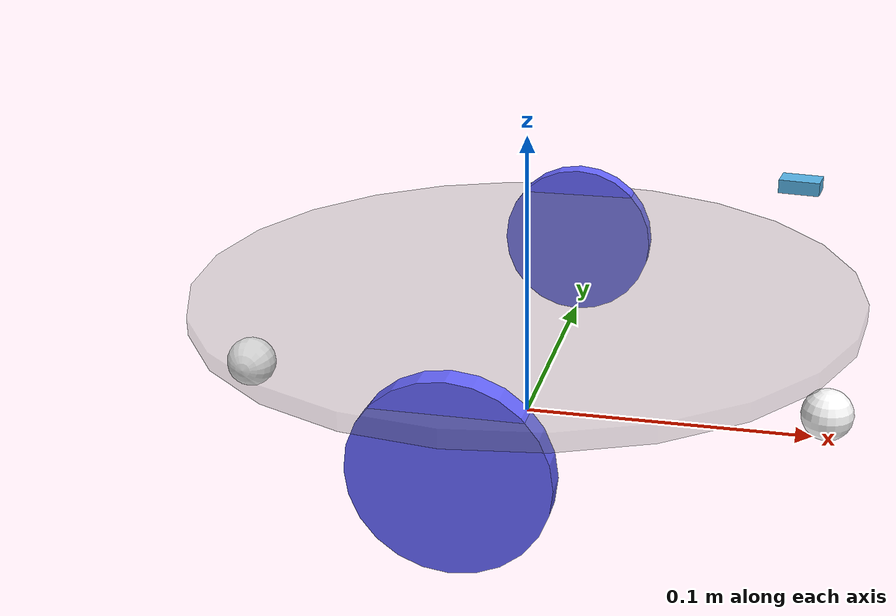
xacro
<?xml version="1.0" encoding="UTF-8" ?>
<robot name="prsg2_robot" xmlns:xacro="http://www.ros.org/wiki/xacro">

  <xacro:property name="degree" value="${pi / 180}" />
  <xacro:property name="inch" value="0.0254" />

  <xacro:property name="base_diameter" value="${9 * inch}" />
  <xacro:property name="base_thickness" value="0.006" />
  <xacro:property name="deck_height" value="0.050" />

  <xacro:property name="wheel_diameter" value="0.060" />
  <xacro:property name="wheel_thickness" value="0.008" />
  <xacro:property name="wheel_separation" value="0.205" />

  <xacro:property name="caster_diameter" value="0.018" />
  <xacro:property name="caster_thickness" value="0.018" />
  <xacro:property name="caster_setback" value="0.010" />

  <!-- servo setback is the center of the servo axis, ir setback is the centering of the sensor on servo -->
  <xacro:property name="servo_setback" value="0.002" />
  <xacro:property name="ir_setback" value="-0.015" />

  <xacro:property name="ir_left_servo_angle" value="${-45. * degree}" />
  <xacro:property name="ir_right_servo_angle" value="${30. * degree}" />

  <xacro:property name="camera_height" value="0.075" />
  <xacro:property name="camera_setback" value="0.025" />

  <xacro:macro name="material_color" params="r g b a:=1.0">
    <material name="color_${r}_${g}_${b}_{$a}">
      <color rgba="${r} ${g} ${b} ${a}" />
    </material>
  </xacro:macro>

  <xacro:macro name="polar_position" params="r theta z:=0 l0 l1 angle:=0">
    <link name="${l1}_ray_link" />
    <joint name="${l0}_to_${l1}_ray" type="fixed">
      <parent link="${l0}" />
      <child link="${l1}_ray_link" />
      <origin rpy="0 0 ${theta}" />
    </joint>
    <joint name="${l1}_ray_to_${l1}" type="fixed">
      <parent link="${l1}_ray_link" />
      <child link="${l1}" />
      <origin xyz="${r} 0 ${z}" rpy="0 0 ${angle}" />
    </joint>
  </xacro:macro>

  <xacro:macro name="polar_position_servo" params="r theta z:=0 l0 l1 angle:=0">
    <link name="${l1}_ray_link" />
    <joint name="${l0}_to_${l1}_ray" type="fixed">
      <parent link="${l0}" />
      <child link="${l1}_ray_link" />
      <origin rpy="0 0 ${theta}" />
    </joint>
    <joint name="${l1}_ray_to_${l1}" type="fixed">  <!-- "revolute">  -->
      <parent link="${l1}_ray_link" />
      <child link="${l1}" />
      <origin xyz="${r} 0 ${z}" rpy="0 0 ${angle}" />
      <!-- axis of servo rotation: -->
    </joint>
  </xacro:macro>

  <!-- The robot description -->

  <link name="base_link">
    <collision>
      <origin xyz="0 0 ${deck_height - base_thickness/2}" rpy="0 0 0" />
      <geometry>
        <cylinder length="${base_thickness}" radius="${base_diameter / 2}" />
      </geometry>
    </collision>
    <visual>
      <origin xyz="0 0 ${deck_height - base_thickness/2}" rpy="0 0 0" />
      <geometry>
        <cylinder length="${base_thickness}" radius="${base_diameter / 2}" />
      </geometry>
      <xacro:material_color r="0.5" g="0.5" b="0.5" a="0.3" />
    </visual>
    <inertial>
      <origin xyz="0 0 ${deck_height - base_thickness/2}" rpy="0 0 0" />
      <mass value="1"/>
      <inertia ixx="100" ixy="0" ixz="0" iyy="100" iyz="0" izz="100" />
    </inertial>
  </link>

  <xacro:macro name="wheel" params="link_name relative_link r theta">
    <link name="${link_name}">
      <collision>
        <origin xyz="0 0 0" rpy="${90 * degree} 0 0" />
        <geometry>
          <cylinder length="${wheel_thickness}" radius="${wheel_diameter / 2}" />
        </geometry>
      </collision>
      <visual>
        <origin xyz="0 0 0" rpy="${90 * degree} 0 0" />
        <geometry>
          <cylinder length="${wheel_thickness}" radius="${wheel_diameter / 2}" />
        </geometry>
        <xacro:material_color r="0.4" g="0.4" b="1.0" />
      </visual>
      <inertial>
	<origin xyz="0 0 0" rpy="${90 * degree} 0 0" />
	<mass value="1"/>
	<inertia ixx="100" ixy="0" ixz="0" iyy="100" iyz="0" izz="100" />
      </inertial>
    </link>
    <xacro:polar_position r="${r}" theta="${theta}" z="${wheel_diameter / 2}"
      l0="${relative_link}" l1="${link_name}"
      angle="${- theta}" />
  </xacro:macro>

  <xacro:wheel link_name="left_wheel_link" relative_link="base_link"
    r="${wheel_separation / 2}" theta="${90 * degree}" />

  <xacro:wheel link_name="right_wheel_link" relative_link="base_link"
    r="${wheel_separation / 2}" theta="${-90 * degree}" />

  <link name="front_caster_link">
    <collision>
      <origin rpy="0 0 0" />
      <geometry>
        <sphere radius="${caster_diameter/2}" />
      </geometry>
    </collision>
    <visual>
      <origin rpy="0 0 0" />
      <geometry>
        <sphere radius="${caster_diameter/2}" />
      </geometry>
      <xacro:material_color r="1.0" g="1.0" b="1.0" />
    </visual>
    <inertial>
      <origin xyz="0 0 0" rpy="0 0 0" />
      <mass value="0.1"/>
      <inertia ixx="10" ixy="0" ixz="0" iyy="10" iyz="0" izz="10" />
    </inertial>
  </link>
  <xacro:polar_position
    r="${base_diameter/2 - caster_setback}"
    theta="${0 * degree}" angle="${0 * degree}"
    z="${caster_diameter / 2}"
    l0="base_link" l1="front_caster_link" />

  <link name="rear_caster_link">
    <collision>
      <origin rpy="${90 * degree} 0 0" />
      <geometry>
        <sphere radius="${caster_diameter/2}" />
      </geometry>
    </collision>
    <visual>
      <origin rpy="${90 * degree} 0 0" />
      <geometry>
        <sphere radius="${caster_diameter/2}" />
      </geometry>
      <xacro:material_color r="1.0" g="1.0" b="1.0" />
    </visual>
    <inertial>
      <origin xyz="0 0 0" rpy="0 0 0" />
      <mass value="0.1"/>
      <inertia ixx="10" ixy="0" ixz="0" iyy="10" iyz="0" izz="10" />
    </inertial>
  </link>
  <xacro:polar_position
    r="${base_diameter/2 - caster_setback}"
    theta="${-180 * degree}" angle="${180 * degree}"
    z="${caster_diameter / 2}"
    l0="base_link" l1="rear_caster_link" />

  <xacro:macro name="ir_sensor_servo" params="link_name theta z:=0.019 angle:=0">
    <link name="${link_name}">
      <collision>
        <origin xyz="0 0 0" rpy="0 0 0" />
        <geometry>
	  <!-- platter on which IR sensor sits: -->
	  <!-- length might be z-offset + thickness instead -->
	  <box size="0.015 0.01 0.005" />
        </geometry>
      </collision>
      <visual>
        <origin xyz="0 0 0" rpy="0 0 0" />
        <geometry>
	  <!-- platter on which IR sensor sits: -->
	  <!-- length might be z-offset + thickness instead -->
	  <box size="0.015 0.01 0.005" />
        </geometry>
      </visual>
      <inertial>
	<origin xyz="0 0 0" rpy="0 0 0" />
	<mass value="0.1"/>
	<inertia ixx="10" ixy="0" ixz="0" iyy="10" iyz="0" izz="10" />
      </inertial>
    </link>
    <xacro:polar_position_servo r="${base_diameter/2 - servo_setback}"
      theta="${theta}" z="${deck_height + z}" angle="${angle}"
      l0="base_link" l1="${link_name}" />
  </xacro:macro>

  <!--  This needs to link from ir_sensor_servo.  polar_position needs to be changed. -->
  <xacro:macro name="ir_sensor" params="link_name theta z:=0.021 angle:=0">
    <link name="${link_name}">
      <collision>
        <origin xyz="${-ir_setback -0.004385} 0 ${z-0.00249}" rpy="0 0 0" />
        <geometry>
          <!-- Dimensions taken from Pololu dimensional diagram:
            https://www.pololu.com/file/0J817/sds02a-dimensions.pdf -->
          <box size="0.00877 0.01041 0.03302" />
        </geometry>
      </collision>
      <visual>
        <origin xyz="${-ir_setback -0.004385} 0 ${z-0.00249}" rpy="0 0 0" />
        <geometry>
          <!-- Dimensions taken from Pololu dimensional diagram:
            https://www.pololu.com/file/0J817/sds02a-dimensions.pdf -->
          <box size="0.00877 0.01041 0.03302" />
        </geometry>
      </visual>
      <inertial>
	<origin xyz="${-ir_setback -0.004385} 0 ${z-0.00249}" rpy="0 0 0" />
	<mass value="0.1"/>
	<inertia ixx="10" ixy="0" ixz="0" iyy="10" iyz="0" izz="10" />
      </inertial>
    </link>
    <xacro:polar_position r="${base_diameter/2 - ir_setback}"
      theta="${theta}" z="${deck_height + z}" angle="${angle}"
      l0="base_link" l1="${link_name}" />
  </xacro:macro>

  <xacro:ir_sensor_servo link_name="ir_left_front_servo_link" theta="${37.4 * degree}" angle="${ir_left_servo_angle}" />

</robot>
